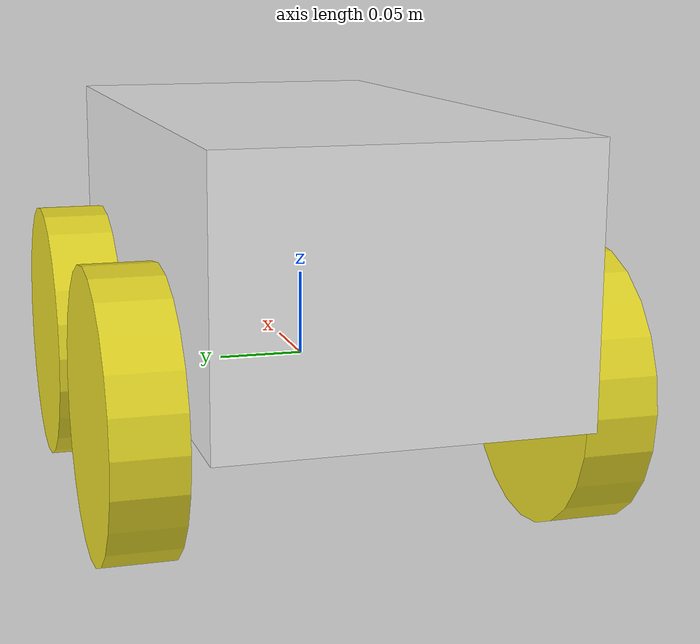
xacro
<?xml version="1.0"?>
<robot xmlns:xacro="http://www.ros.org/wiki/xacro" >

    <!-- BASE LINK -->

    <link name="base_link"/>

    <!-- BASE FOOTPRINT LINK -->

    <joint name="base_footprint_joint" type="fixed">
        <parent link="base_footprint"/>
        <child link="base_link"/>
        <origin xyz="0 0 0"/>
    </joint>

    <link name="base_footprint"/>

    <!-- CHASSIS LINK -->

    <joint name="chassis_joint" type="fixed">
        <parent link="base_link"/>
        <child link="chassis"/>
        <origin xyz="0 0 0.075"/>
    </joint>

    <link name="chassis">
        <visual>
            <origin xyz="0 0 0"/>
            <geometry>
                <box size="0.4 0.2 0.15"/>
            </geometry>
            <!-- Color for RVIZ -->
            <material name="white"/>
        </visual>
        <collision>
            <origin xyz="0 0 0"/>
            <geometry>
                <box size="0.4 0.2 0.15"/>
            </geometry>
        </collision>
        <xacro:inertial_box mass="0.5" x="0.4" y="0.2" z="0.15">
            <origin xyz="0 0 0" rpy="0 0 0"/>
        </xacro:inertial_box>
    </link>

    <!-- Color for Gazebo -->
    <gazebo reference="chassis">
        <material>Gazebo/White</material>
    </gazebo>

    <!-- FRONT LEFT WHEEL LINK -->

    <joint name="front_left_wheel_joint" type="continuous">
        <parent link="base_link"/>
        <child link="front_left_wheel"/>
        <origin xyz="0.1 0.125 0" rpy="-${pi/2} 0 0"/>
        <axis xyz="0 0 1"/>
    </joint>

    <link name="front_left_wheel">
        <visual>
            <geometry>
                <cylinder radius="0.08" length="0.04"/>
            </geometry>
            <material name="yellow"/>
        </visual>
        <collision>
            <geometry>
                <sphere radius="0.08"/>
            </geometry>
        </collision>
        <xacro:inertial_cylinder mass="0.1" length="0.04" radius="0.08">
            <origin xyz="0 0 0" rpy="0 0 0"/>
        </xacro:inertial_cylinder>
    </link>

    <gazebo reference="front_left_wheel">
        <material>Gazebo/Wood</material>
    </gazebo>

    <!-- FRONT RIGHT WHEEL LINK -->

    <joint name="front_right_wheel_joint" type="continuous">
        <parent link="base_link"/>
        <child link="front_right_wheel"/>
        <origin xyz="0.1 -0.125 0" rpy="${pi/2} 0 0"/>
        <axis xyz="0 0 -1"/>
    </joint>

    <link name="front_right_wheel">
        <visual>
            <geometry>
                <cylinder radius="0.08" length="0.04"/>
            </geometry>
            <material name="yellow"/>
        </visual>
        <collision>
            <geometry>
                <sphere radius="0.08"/>
            </geometry>
        </collision>
        <xacro:inertial_cylinder mass="0.1" length="0.04" radius="0.08">
            <origin xyz="0 0 0" rpy="0 0 0"/>
        </xacro:inertial_cylinder>
    </link>

    <gazebo reference="front_right_wheel">
        <material>Gazebo/Wood</material>
    </gazebo>

    <!-- BACK LEFT WHEEL LINK -->

    <joint name="back_left_wheel_joint" type="continuous">
        <parent link="base_link"/>
        <child link="back_left_wheel"/>
        <origin xyz="-0.1 0.125 0" rpy="-${pi/2} 0 0"/>
        <axis xyz="0 0 1"/>
    </joint>

    <link name="back_left_wheel">
        <visual>
            <geometry>
                <cylinder radius="0.08" length="0.04"/>
            </geometry>
            <material name="yellow"/>
        </visual>
        <collision>
            <geometry>
                <sphere radius="0.08"/>
            </geometry>
        </collision>
        <xacro:inertial_cylinder mass="0.1" length="0.04" radius="0.08">
            <origin xyz="0 0 0" rpy="0 0 0"/>
        </xacro:inertial_cylinder>
    </link>

    <gazebo reference="back_left_wheel">
        <material>Gazebo/Wood</material>
    </gazebo>

    <!-- BACK RIGHT WHEEL LINK -->

    <joint name="back_right_wheel_joint" type="continuous">
        <parent link="base_link"/>
        <child link="back_right_wheel"/>
        <origin xyz="-0.1 -0.125 0" rpy="${pi/2} 0 0"/>
        <axis xyz="0 0 -1"/>
    </joint>

    <link name="back_right_wheel">
        <visual>
            <geometry>
                <cylinder radius="0.08" length="0.04"/>
            </geometry>
            <material name="yellow"/>
        </visual>
        <collision>
            <geometry>
                <sphere radius="0.08"/>
            </geometry>
        </collision>
        <xacro:inertial_cylinder mass="0.1" length="0.04" radius="0.08">
            <origin xyz="0 0 0" rpy="0 0 0"/>
        </xacro:inertial_cylinder>
    </link>

    <gazebo reference="back_right_wheel">
        <material>Gazebo/Wood</material>
    </gazebo>

</robot>
